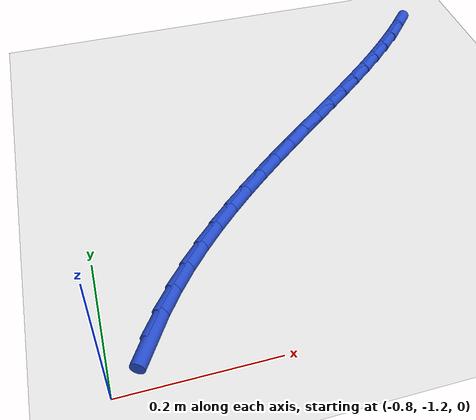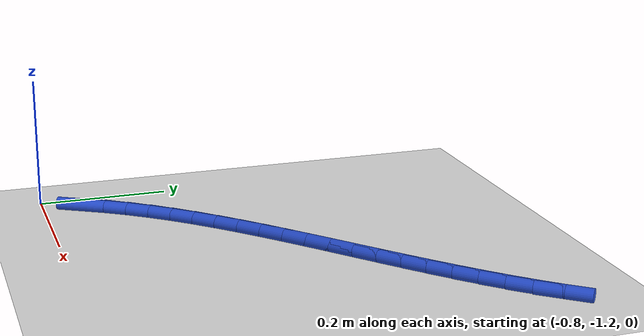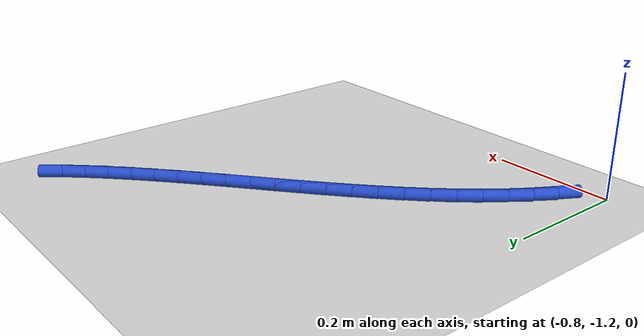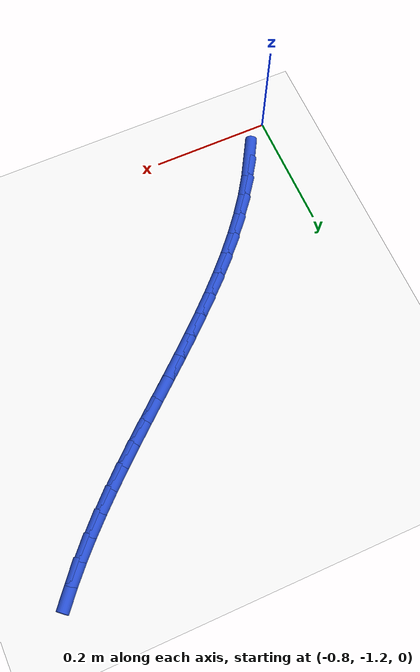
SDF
<sdf version="1.6">
 <world name="default">
  <model name="ground_plane">
   <static>1</static>
   <link name="link">
    <collision name="collision">
     <geometry><plane><normal>0 0 1</normal><size>100 100</size></plane></geometry>
     <surface><friction><ode><mu>100</mu><mu2>50</mu2></ode></friction></surface>
    </collision>
    <visual name="visual">
     <cast_shadows>0</cast_shadows>
     <geometry><plane><normal>0 0 1</normal><size>100 100</size></plane></geometry>
     <material>
      <script><uri>file://media/materials/scripts/gazebo.material</uri><name>Gazebo/WhiteGlow</name></script>
     </material>
    </visual>
   </link>
  </model>
  <model name="line">
   <link name="link_213">
    <pose>-0.7464948269701634 -1.1419381095837293 0.01 0 1.57 1.041113468457608</pose>
    <collision name="collision">
     <geometry><cylinder><radius>0.01</radius><length>0.08</length></cylinder></geometry>
    </collision>
    <visual name="visual">
     <material>
      <script><name>Gazebo/Blue</name><uri>file://media/materials/scripts/gazebo.material</uri></script>
     </material>
     <geometry><cylinder><radius>0.01</radius><length>0.08</length></cylinder></geometry>
    </visual>
   </link>
   <link name="link_214">
    <pose>-0.7273954639346636 -1.1093170094045814 0.01 0 1.57 0.9815284772879441</pose>
    <collision name="collision">
     <geometry><cylinder><radius>0.01</radius><length>0.08</length></cylinder></geometry>
    </collision>
    <visual name="visual">
     <material>
      <script><name>Gazebo/Blue</name><uri>file://media/materials/scripts/gazebo.material</uri></script>
     </material>
     <geometry><cylinder><radius>0.01</radius><length>0.08</length></cylinder></geometry>
    </visual>
   </link>
   <link name="link_215">
    <pose>-0.7063452390049965 -1.0778280676526946 0.01 0 1.57 0.92788457156425</pose>
    <collision name="collision">
     <geometry><cylinder><radius>0.01</radius><length>0.08</length></cylinder></geometry>
    </collision>
    <visual name="visual">
     <material>
      <script><name>Gazebo/Blue</name><uri>file://media/materials/scripts/gazebo.material</uri></script>
     </material>
     <geometry><cylinder><radius>0.01</radius><length>0.08</length></cylinder></geometry>
    </visual>
   </link>
   <link name="link_216">
    <pose>-0.6835338531925013 -1.0473755128313094 0.01 0 1.57 0.8802810439816532</pose>
    <collision name="collision">
     <geometry><cylinder><radius>0.01</radius><length>0.08</length></cylinder></geometry>
    </collision>
    <visual name="visual">
     <material>
      <script><name>Gazebo/Blue</name><uri>file://media/materials/scripts/gazebo.material</uri></script>
     </material>
     <geometry><cylinder><radius>0.01</radius><length>0.08</length></cylinder></geometry>
    </visual>
   </link>
   <link name="link_217">
    <pose>-0.6591510075085173 -1.017863573443666 0.01 0 1.57 0.8386712489307552</pose>
    <collision name="collision">
     <geometry><cylinder><radius>0.01</radius><length>0.08</length></cylinder></geometry>
    </collision>
    <visual name="visual">
     <material>
      <script><name>Gazebo/Blue</name><uri>file://media/materials/scripts/gazebo.material</uri></script>
     </material>
     <geometry><cylinder><radius>0.01</radius><length>0.08</length></cylinder></geometry>
    </visual>
   </link>
   <link name="link_218">
    <pose>-0.6333864029643832 -0.989196477993004 0.01 0 1.57 0.8029155719105368</pose>
    <collision name="collision">
     <geometry><cylinder><radius>0.01</radius><length>0.08</length></cylinder></geometry>
    </collision>
    <visual name="visual">
     <material>
      <script><name>Gazebo/Blue</name><uri>file://media/materials/scripts/gazebo.material</uri></script>
     </material>
     <geometry><cylinder><radius>0.01</radius><length>0.08</length></cylinder></geometry>
    </visual>
   </link>
   <link name="link_219">
    <pose>-0.6064297405714384 -0.961278454982564 0.01 0 1.57 0.7728263859526582</pose>
    <collision name="collision">
     <geometry><cylinder><radius>0.01</radius><length>0.08</length></cylinder></geometry>
    </collision>
    <visual name="visual">
     <material>
      <script><name>Gazebo/Blue</name><uri>file://media/materials/scripts/gazebo.material</uri></script>
     </material>
     <geometry><cylinder><radius>0.01</radius><length>0.08</length></cylinder></geometry>
    </visual>
   </link>
   <link name="link_220">
    <pose>-0.578470721341022 -0.9340137329155861 0.01 0 1.57 0.7482032747473149</pose>
    <collision name="collision">
     <geometry><cylinder><radius>0.01</radius><length>0.08</length></cylinder></geometry>
    </collision>
    <visual name="visual">
     <material>
      <script><name>Gazebo/Blue</name><uri>file://media/materials/scripts/gazebo.material</uri></script>
     </material>
     <geometry><cylinder><radius>0.01</radius><length>0.08</length></cylinder></geometry>
    </visual>
   </link>
   <link name="link_221">
    <pose>-0.5496990462844726 -0.9073065402953102 0.01 0 1.57 0.7288590693736281</pose>
    <collision name="collision">
     <geometry><cylinder><radius>0.01</radius><length>0.08</length></cylinder></geometry>
    </collision>
    <visual name="visual">
     <material>
      <script><name>Gazebo/Blue</name><uri>file://media/materials/scripts/gazebo.material</uri></script>
     </material>
     <geometry><cylinder><radius>0.01</radius><length>0.08</length></cylinder></geometry>
    </visual>
   </link>
   <link name="link_222">
    <pose>-0.5203044164131297 -0.8810611056249762 0.01 0 1.57 0.714638296812743</pose>
    <collision name="collision">
     <geometry><cylinder><radius>0.01</radius><length>0.08</length></cylinder></geometry>
    </collision>
    <visual name="visual">
     <material>
      <script><name>Gazebo/Blue</name><uri>file://media/materials/scripts/gazebo.material</uri></script>
     </material>
     <geometry><cylinder><radius>0.01</radius><length>0.08</length></cylinder></geometry>
    </visual>
   </link>
   <link name="link_223">
    <pose>-0.4904765327383324 -0.8551816574078249 0.01 0 1.57 0.7054298844398958</pose>
    <collision name="collision">
     <geometry><cylinder><radius>0.01</radius><length>0.08</length></cylinder></geometry>
    </collision>
    <visual name="visual">
     <material>
      <script><name>Gazebo/Blue</name><uri>file://media/materials/scripts/gazebo.material</uri></script>
     </material>
     <geometry><cylinder><radius>0.01</radius><length>0.08</length></cylinder></geometry>
    </visual>
   </link>
   <link name="link_224">
    <pose>-0.4604050962714195 -0.8295724241470958 0.01 0 1.57 0.7011757717461486</pose>
    <collision name="collision">
     <geometry><cylinder><radius>0.01</radius><length>0.08</length></cylinder></geometry>
    </collision>
    <visual name="visual">
     <material>
      <script><name>Gazebo/Blue</name><uri>file://media/materials/scripts/gazebo.material</uri></script>
     </material>
     <geometry><cylinder><radius>0.01</radius><length>0.08</length></cylinder></geometry>
    </visual>
   </link>
   <link name="link_225">
    <pose>-0.4302798080237303 -0.8041376343460293 0.01 0 1.57 0.7018311594981952</pose>
    <collision name="collision">
     <geometry><cylinder><radius>0.01</radius><length>0.08</length></cylinder></geometry>
    </collision>
    <visual name="visual">
     <material>
      <script><name>Gazebo/Blue</name><uri>file://media/materials/scripts/gazebo.material</uri></script>
     </material>
     <geometry><cylinder><radius>0.01</radius><length>0.08</length></cylinder></geometry>
    </visual>
   </link>
   <link name="link_226">
    <pose>-0.4002862979906892 -0.7787804162803939 0.01 0 1.57 0.707077837699107</pose>
    <collision name="collision">
     <geometry><cylinder><radius>0.01</radius><length>0.08</length></cylinder></geometry>
    </collision>
    <visual name="visual">
     <material>
      <script><name>Gazebo/Blue</name><uri>file://media/materials/scripts/gazebo.material</uri></script>
     </material>
     <geometry><cylinder><radius>0.01</radius><length>0.08</length></cylinder></geometry>
    </visual>
   </link>
   <link name="link_227">
    <pose>-0.3705768762709791 -0.753394893233956 0.01 0 1.57 0.7168144651976563</pose>
    <collision name="collision">
     <geometry><cylinder><radius>0.01</radius><length>0.08</length></cylinder></geometry>
    </collision>
    <visual name="visual">
     <material>
      <script><name>Gazebo/Blue</name><uri>file://media/materials/scripts/gazebo.material</uri></script>
     </material>
     <geometry><cylinder><radius>0.01</radius><length>0.08</length></cylinder></geometry>
    </visual>
   </link>
   <link name="link_228">
    <pose>-0.341287552999283 -0.7278707832833905 0.01 0 1.57 0.731140039747367</pose>
    <collision name="collision">
     <geometry><cylinder><radius>0.01</radius><length>0.08</length></cylinder></geometry>
    </collision>
    <visual name="visual">
     <material>
      <script><name>Gazebo/Blue</name><uri>file://media/materials/scripts/gazebo.material</uri></script>
     </material>
     <geometry><cylinder><radius>0.01</radius><length>0.08</length></cylinder></geometry>
    </visual>
   </link>
   <link name="link_229">
    <pose>-0.31255422716548753 -0.7020977744675233 0.01 0 1.57 0.7501703366671978</pose>
    <collision name="collision">
     <geometry><cylinder><radius>0.01</radius><length>0.08</length></cylinder></geometry>
    </collision>
    <visual name="visual">
     <material>
      <script><name>Gazebo/Blue</name><uri>file://media/materials/scripts/gazebo.material</uri></script>
     </material>
     <geometry><cylinder><radius>0.01</radius><length>0.08</length></cylinder></geometry>
    </visual>
   </link>
   <link name="link_230">
    <pose>-0.28451279775947963 -0.6759655548251811 0.01 0 1.57 0.7740284539877899</pose>
    <collision name="collision">
     <geometry><cylinder><radius>0.01</radius><length>0.08</length></cylinder></geometry>
    </collision>
    <visual name="visual">
     <material>
      <script><name>Gazebo/Blue</name><uri>file://media/materials/scripts/gazebo.material</uri></script>
     </material>
     <geometry><cylinder><radius>0.01</radius><length>0.08</length></cylinder></geometry>
    </visual>
   </link>
   <link name="link_231">
    <pose>-0.25729916377114614 -0.6493638123951894 0.01 0 1.57 0.802832502908733</pose>
    <collision name="collision">
     <geometry><cylinder><radius>0.01</radius><length>0.08</length></cylinder></geometry>
    </collision>
    <visual name="visual">
     <material>
      <script><name>Gazebo/Blue</name><uri>file://media/materials/scripts/gazebo.material</uri></script>
     </material>
     <geometry><cylinder><radius>0.01</radius><length>0.08</length></cylinder></geometry>
    </visual>
   </link>
   <link name="link_232">
    <pose>-0.23104922419037383 -0.6221822352163752 0.01 0 1.57 0.8366785422121095</pose>
    <collision name="collision">
     <geometry><cylinder><radius>0.01</radius><length>0.08</length></cylinder></geometry>
    </collision>
    <visual name="visual">
     <material>
      <script><name>Gazebo/Blue</name><uri>file://media/materials/scripts/gazebo.material</uri></script>
     </material>
     <geometry><cylinder><radius>0.01</radius><length>0.08</length></cylinder></geometry>
    </visual>
   </link>
   <link name="link_233">
    <pose>-0.20589887800704956 -0.5943105113275641 0.01 0 1.57 0.8756183841718743</pose>
    <collision name="collision">
     <geometry><cylinder><radius>0.01</radius><length>0.08</length></cylinder></geometry>
    </collision>
    <visual name="visual">
     <material>
      <script><name>Gazebo/Blue</name><uri>file://media/materials/scripts/gazebo.material</uri></script>
     </material>
     <geometry><cylinder><radius>0.01</radius><length>0.08</length></cylinder></geometry>
    </visual>
   </link>
  </model>
 </world>
</sdf>
